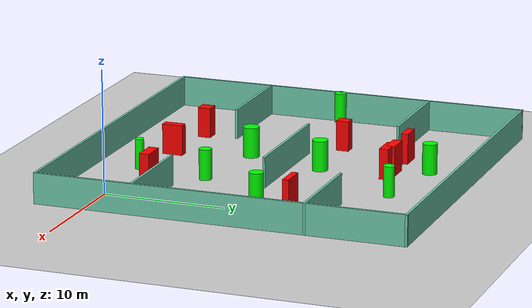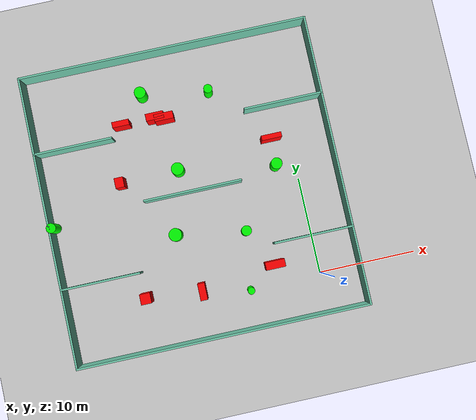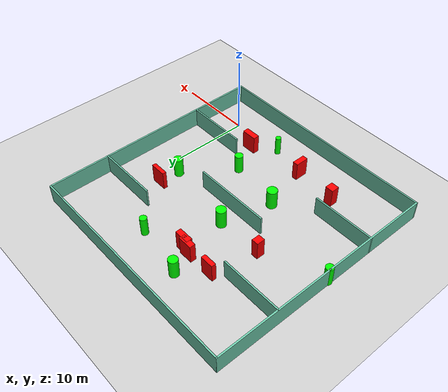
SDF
<sdf version="1.7">
 <world name="default">
  <light name="sun" type="directional">
   <pose>0 0 10 0 -0 0</pose>
   <diffuse>0.8 0.8 0.8 1</diffuse>
   <specular>0.2 0.2 0.2 1</specular>
   <attenuation>
    <range>1000</range>
    <constant>0.9</constant>
    <linear>0.01</linear>
    <quadratic>0.001</quadratic>
   </attenuation>
   <direction>-0.5 0.1 -0.9</direction>
   <spot><inner_angle>0</inner_angle><outer_angle>0</outer_angle><falloff>0</falloff></spot>
  </light>
  <model name="ground_plane">
   <static>1</static>
   <link name="link">
    <collision name="collision">
     <geometry><plane><normal>0 0 1</normal><size>100 100</size></plane></geometry>
     <surface>
      <contact><collide_bitmask>65535</collide_bitmask></contact>
      <friction><ode><mu>100</mu><mu2>50</mu2></ode></friction>
     </surface>
    </collision>
    <visual name="visual">
     <cast_shadows>0</cast_shadows>
     <geometry><plane><normal>0 0 1</normal><size>100 100</size></plane></geometry>
     <material>
      <script><uri>file://media/materials/scripts/gazebo.material</uri><name>Gazebo/Grey</name></script>
     </material>
    </visual>
   </link>
  </model>
  <gravity>0 0 -9.8</gravity>
  <magnetic_field>6e-06 2.3e-05 -4.2e-05</magnetic_field>
  <atmosphere type="adiabatic"/>
  <physics type="ode">
   <max_step_size>0.001</max_step_size>
   <real_time_factor>1</real_time_factor>
   <real_time_update_rate>1000</real_time_update_rate>
  </physics>
  <scene><ambient>0.4 0.4 0.4 1</ambient><background>0.7 0.7 0.7 1</background><shadows>1</shadows></scene>
  <spherical_coordinates>
   <surface_model>EARTH_WGS84</surface_model>
   <latitude_deg>0</latitude_deg>
   <longitude_deg>0</longitude_deg>
   <elevation>0</elevation>
   <heading_deg>0</heading_deg>
  </spherical_coordinates>
  <model name="my_base_walls">
   <link name="Wall_10">
    <collision name="Wall_10_Collision">
     <geometry><box><size>8.2 0.2 2.5</size></box></geometry>
     <pose>0 0 1.25 0 -0 0</pose>
    </collision>
    <visual name="Wall_10_Visual">
     <pose>0 0 1.25 0 -0 0</pose>
     <geometry><box><size>8.2 0.2 2.5</size></box></geometry>
     <material>
      <script><uri>file://media/materials/scripts/gazebo.material</uri><name>Gazebo/Grey</name></script>
      <ambient>0.435294 0.796078 0.67451 1</ambient>
     </material>
     <meta><layer>0</layer></meta>
    </visual>
    <pose>-11 -7 0 0 -0 0</pose>
   </link>
   <link name="Wall_12">
    <collision name="Wall_12_Collision">
     <geometry><box><size>8.2 0.2 2.5</size></box></geometry>
     <pose>0 0 1.25 0 -0 0</pose>
    </collision>
    <visual name="Wall_12_Visual">
     <pose>0 0 1.25 0 -0 0</pose>
     <geometry><box><size>8.2 0.2 2.5</size></box></geometry>
     <material>
      <script><uri>file://media/materials/scripts/gazebo.material</uri><name>Gazebo/Grey</name></script>
      <ambient>0.435294 0.796078 0.67451 1</ambient>
     </material>
     <meta><layer>0</layer></meta>
    </visual>
    <pose>-11 7 0 0 -0 0</pose>
   </link>
   <link name="Wall_14">
    <collision name="Wall_14_Collision">
     <geometry><box><size>8.2 0.2 2.5</size></box></geometry>
     <pose>0 0 1.25 0 -0 0</pose>
    </collision>
    <visual name="Wall_14_Visual">
     <pose>0 0 1.25 0 -0 0</pose>
     <geometry><box><size>8.2 0.2 2.5</size></box></geometry>
     <material>
      <script><uri>file://media/materials/scripts/gazebo.material</uri><name>Gazebo/Grey</name></script>
      <ambient>0.435294 0.796078 0.67451 1</ambient>
     </material>
     <meta><layer>0</layer></meta>
    </visual>
    <pose>11 7 0 0 -0 3.14159</pose>
   </link>
   <link name="Wall_16">
    <collision name="Wall_16_Collision">
     <geometry><box><size>10.2 0.2 2.5</size></box></geometry>
     <pose>0 0 1.25 0 -0 0</pose>
    </collision>
    <visual name="Wall_16_Visual">
     <pose>0 0 1.25 0 -0 0</pose>
     <geometry><box><size>10.2 0.2 2.5</size></box></geometry>
     <material>
      <script><uri>file://media/materials/scripts/gazebo.material</uri><name>Gazebo/Grey</name></script>
      <ambient>0.435294 0.796078 0.67451 1</ambient>
     </material>
     <meta><layer>0</layer></meta>
    </visual>
    <pose>0 0 0 0 -0 3.14159</pose>
   </link>
   <link name="Wall_2">
    <collision name="Wall_2_Collision">
     <geometry><box><size>30.2 0.2 2.5</size></box></geometry>
     <pose>0 0 1.25 0 -0 0</pose>
    </collision>
    <visual name="Wall_2_Visual">
     <pose>0 0 1.25 0 -0 0</pose>
     <geometry><box><size>30.2 0.2 2.5</size></box></geometry>
     <material>
      <script><uri>file://media/materials/scripts/gazebo.material</uri><name>Gazebo/Grey</name></script>
      <ambient>0.435294 0.796078 0.67451 1</ambient>
     </material>
     <meta><layer>0</layer></meta>
    </visual>
    <pose>0 -15 0 0 -0 3.14159</pose>
   </link>
   <link name="Wall_3">
    <collision name="Wall_3_Collision">
     <geometry><box><size>30.2 0.2 2.5</size></box></geometry>
     <pose>0 0 1.25 0 -0 0</pose>
    </collision>
    <visual name="Wall_3_Visual">
     <pose>0 0 1.25 0 -0 0</pose>
     <geometry><box><size>30.2 0.2 2.5</size></box></geometry>
     <material>
      <script><uri>file://media/materials/scripts/gazebo.material</uri><name>Gazebo/Grey</name></script>
      <ambient>0.435294 0.796078 0.67451 1</ambient>
     </material>
     <meta><layer>0</layer></meta>
    </visual>
    <pose>-15 0 0 0 -0 1.5708</pose>
   </link>
   <link name="Wall_4">
    <collision name="Wall_4_Collision">
     <geometry><box><size>30.2 0.2 2.5</size></box></geometry>
     <pose>0 0 1.25 0 -0 0</pose>
    </collision>
    <visual name="Wall_4_Visual">
     <pose>0 0 1.25 0 -0 0</pose>
     <geometry><box><size>30.2 0.2 2.5</size></box></geometry>
     <material>
      <script><uri>file://media/materials/scripts/gazebo.material</uri><name>Gazebo/Grey</name></script>
      <ambient>0.435294 0.796078 0.67451 1</ambient>
     </material>
     <meta><layer>0</layer></meta>
    </visual>
    <pose>0 15 0 0 -0 0</pose>
   </link>
   <link name="Wall_6">
    <collision name="Wall_6_Collision">
     <geometry><box><size>30.2 0.2 2.5</size></box></geometry>
     <pose>0 0 1.25 0 -0 0</pose>
    </collision>
    <visual name="Wall_6_Visual">
     <pose>0 0 1.25 0 -0 0</pose>
     <geometry><box><size>30.2 0.2 2.5</size></box></geometry>
     <material>
      <script><uri>file://media/materials/scripts/gazebo.material</uri><name>Gazebo/Grey</name></script>
      <ambient>0.435294 0.796078 0.67451 1</ambient>
     </material>
     <meta><layer>0</layer></meta>
    </visual>
    <pose>15 0 0 0 -0 1.5708</pose>
   </link>
   <link name="Wall_8">
    <collision name="Wall_8_Collision">
     <geometry><box><size>8.2 0.2 2.5</size></box></geometry>
     <pose>0 0 1.25 0 -0 0</pose>
    </collision>
    <visual name="Wall_8_Visual">
     <pose>0 0 1.25 0 -0 0</pose>
     <geometry><box><size>8.2 0.2 2.5</size></box></geometry>
     <material>
      <script><uri>file://media/materials/scripts/gazebo.material</uri><name>Gazebo/Grey</name></script>
      <ambient>0.435294 0.796078 0.67451 1</ambient>
     </material>
     <meta><layer>0</layer></meta>
    </visual>
    <pose>11 -7 0 0 -0 3.14159</pose>
   </link>
   <static>1</static>
   <pose>-11 11 0 0 -0 0</pose>
  </model>
  <model name="cylinder1">
   <static>1</static>
   <link name="link">
    <inertial>
     <mass>1</mass>
     <inertia><ixx>0.5</ixx><ixy>0</ixy><ixz>0</ixz><iyy>0.5</iyy><iyz>0</iyz><izz>1</izz></inertia>
    </inertial>
    <collision name="collision">
     <geometry><cylinder><radius>0.6436293632819654</radius><length>2.5</length></cylinder></geometry>
    </collision>
    <visual name="visual">
     <geometry><cylinder><radius>0.6436293632819654</radius><length>2.5</length></cylinder></geometry>
     <material>
      <ambient>0 1 0 1</ambient>
      <diffuse>0 1 0 1</diffuse>
      <specular>0.1 0.1 0.1 1</specular>
      <emissive>0 0 0 0</emissive>
     </material>
    </visual>
   </link>
   <pose>-12.047141002691557 13.453693067569592 1.25 0 0 0</pose>
  </model>
  <model name="cylinder2">
   <static>1</static>
   <link name="link">
    <inertial>
     <mass>1</mass>
     <inertia><ixx>0.5</ixx><ixy>0</ixy><ixz>0</ixz><iyy>0.5</iyy><iyz>0</iyz><izz>1</izz></inertia>
    </inertial>
    <collision name="collision">
     <geometry><cylinder><radius>0.5948579140802455</radius><length>2.5</length></cylinder></geometry>
    </collision>
    <visual name="visual">
     <geometry><cylinder><radius>0.5948579140802455</radius><length>2.5</length></cylinder></geometry>
     <material>
      <ambient>0 1 0 1</ambient>
      <diffuse>0 1 0 1</diffuse>
      <specular>0.1 0.1 0.1 1</specular>
      <emissive>0 0 0 0</emissive>
     </material>
    </visual>
   </link>
   <pose>-14.155045559700088 21.93722171552936 1.25 0 0 0</pose>
  </model>
  <model name="cylinder3">
   <static>1</static>
   <link name="link">
    <inertial>
     <mass>1</mass>
     <inertia><ixx>0.5</ixx><ixy>0</ixy><ixz>0</ixz><iyy>0.5</iyy><iyz>0</iyz><izz>1</izz></inertia>
    </inertial>
    <collision name="collision">
     <geometry><cylinder><radius>0.5205876117994227</radius><length>2.5</length></cylinder></geometry>
    </collision>
    <visual name="visual">
     <geometry><cylinder><radius>0.5205876117994227</radius><length>2.5</length></cylinder></geometry>
     <material>
      <ambient>0 1 0 1</ambient>
      <diffuse>0 1 0 1</diffuse>
      <specular>0.1 0.1 0.1 1</specular>
      <emissive>0 0 0 0</emissive>
     </material>
    </visual>
   </link>
   <pose>-6.562461456213374 5.832173737597611 1.25 0 0 0</pose>
  </model>
  <model name="cylinder4">
   <static>1</static>
   <link name="link">
    <inertial>
     <mass>1</mass>
     <inertia><ixx>0.5</ixx><ixy>0</ixy><ixz>0</ixz><iyy>0.5</iyy><iyz>0</iyz><izz>1</izz></inertia>
    </inertial>
    <collision name="collision">
     <geometry><cylinder><radius>0.5024391320687099</radius><length>2.5</length></cylinder></geometry>
    </collision>
    <visual name="visual">
     <geometry><cylinder><radius>0.5024391320687099</radius><length>2.5</length></cylinder></geometry>
     <material>
      <ambient>0 1 0 1</ambient>
      <diffuse>0 1 0 1</diffuse>
      <specular>0.1 0.1 0.1 1</specular>
      <emissive>0 0 0 0</emissive>
     </material>
    </visual>
   </link>
   <pose>-25.752436826650527 10.309649597551843 1.25 0 0 0</pose>
  </model>
  <model name="cylinder5">
   <static>1</static>
   <link name="link">
    <inertial>
     <mass>1</mass>
     <inertia><ixx>0.5</ixx><ixy>0</ixy><ixz>0</ixz><iyy>0.5</iyy><iyz>0</iyz><izz>1</izz></inertia>
    </inertial>
    <collision name="collision">
     <geometry><cylinder><radius>0.6657884262083571</radius><length>2.5</length></cylinder></geometry>
    </collision>
    <visual name="visual">
     <geometry><cylinder><radius>0.6657884262083571</radius><length>2.5</length></cylinder></geometry>
     <material>
      <ambient>0 1 0 1</ambient>
      <diffuse>0 1 0 1</diffuse>
      <specular>0.1 0.1 0.1 1</specular>
      <emissive>0 0 0 0</emissive>
     </material>
    </visual>
   </link>
   <pose>-13.654989906937075 6.969797752562172 1.25 0 0 0</pose>
  </model>
  <model name="cylinder6">
   <static>1</static>
   <link name="link">
    <inertial>
     <mass>1</mass>
     <inertia><ixx>0.5</ixx><ixy>0</ixy><ixz>0</ixz><iyy>0.5</iyy><iyz>0</iyz><izz>1</izz></inertia>
    </inertial>
    <collision name="collision">
     <geometry><cylinder><radius>0.35737576091746726</radius><length>2.5</length></cylinder></geometry>
    </collision>
    <visual name="visual">
     <geometry><cylinder><radius>0.35737576091746726</radius><length>2.5</length></cylinder></geometry>
     <material>
      <ambient>0 1 0 1</ambient>
      <diffuse>0 1 0 1</diffuse>
      <specular>0.1 0.1 0.1 1</specular>
      <emissive>0 0 0 0</emissive>
     </material>
    </visual>
   </link>
   <pose>-7.376401384146876 -0.1531970920408634 1.25 0 0 0</pose>
  </model>
  <model name="cylinder7">
   <static>1</static>
   <link name="link">
    <inertial>
     <mass>1</mass>
     <inertia><ixx>0.5</ixx><ixy>0</ixy><ixz>0</ixz><iyy>0.5</iyy><iyz>0</iyz><izz>1</izz></inertia>
    </inertial>
    <collision name="collision">
     <geometry><cylinder><radius>0.5829204481960026</radius><length>2.5</length></cylinder></geometry>
    </collision>
    <visual name="visual">
     <geometry><cylinder><radius>0.5829204481960026</radius><length>2.5</length></cylinder></geometry>
     <material>
      <ambient>0 1 0 1</ambient>
      <diffuse>0 1 0 1</diffuse>
      <specular>0.1 0.1 0.1 1</specular>
      <emissive>0 0 0 0</emissive>
     </material>
    </visual>
   </link>
   <pose>-2.095137140694792 11.835194319665465 1.25 0 0 0</pose>
  </model>
  <model name="cylinder8">
   <static>1</static>
   <link name="link">
    <inertial>
     <mass>1</mass>
     <inertia><ixx>0.5</ixx><ixy>0</ixy><ixz>0</ixz><iyy>0.5</iyy><iyz>0</iyz><izz>1</izz></inertia>
    </inertial>
    <collision name="collision">
     <geometry><cylinder><radius>0.45071790574781057</radius><length>2.5</length></cylinder></geometry>
    </collision>
    <visual name="visual">
     <geometry><cylinder><radius>0.45071790574781057</radius><length>2.5</length></cylinder></geometry>
     <material>
      <ambient>0 1 0 1</ambient>
      <diffuse>0 1 0 1</diffuse>
      <specular>0.1 0.1 0.1 1</specular>
      <emissive>0 0 0 0</emissive>
     </material>
    </visual>
   </link>
   <pose>-7.279014179493005 20.83412196503513 1.25 0 0 0</pose>
  </model>
  <model name="box1">
   <static>1</static>
   <link name="link">
    <inertial>
     <mass>1</mass>
     <inertia><ixx>0.083</ixx><ixy>0</ixy><ixz>0</ixz><iyy>0.083</iyy><iyz>0</iyz><izz>0.083</izz></inertia>
    </inertial>
    <collision name="collision">
     <geometry><box><size>1.7414383840102514 0.5787346593927396 2.5</size></box></geometry>
    </collision>
    <visual name="visual">
     <geometry><box><size>1.7414383840102514 0.5787346593927396 2.5</size></box></geometry>
     <material>
      <ambient>1 0 0 1</ambient>
      <diffuse>1 0 0 1</diffuse>
      <specular>0.1 0.1 0.1 1</specular>
      <emissive>0 0 0 0</emissive>
     </material>
    </visual>
    <sensor name="my_contact" type="contact">
     <contact><collision>box_collision</collision><topic>__default_topic__</topic></contact>
    </sensor>
   </link>
   <pose>-16.745026980989085 19.24484842369126 1.25 0 0 0</pose>
  </model>
  <model name="box2">
   <static>1</static>
   <link name="link">
    <inertial>
     <mass>1</mass>
     <inertia><ixx>0.083</ixx><ixy>0</ixy><ixz>0</ixz><iyy>0.083</iyy><iyz>0</iyz><izz>0.083</izz></inertia>
    </inertial>
    <collision name="collision">
     <geometry><box><size>1.9681027125350516 0.7456443283368066 2.5</size></box></geometry>
    </collision>
    <visual name="visual">
     <geometry><box><size>1.9681027125350516 0.7456443283368066 2.5</size></box></geometry>
     <material>
      <ambient>1 0 0 1</ambient>
      <diffuse>1 0 0 1</diffuse>
      <specular>0.1 0.1 0.1 1</specular>
      <emissive>0 0 0 0</emissive>
     </material>
    </visual>
    <sensor name="my_contact" type="contact">
     <contact><collision>box_collision</collision><topic>__default_topic__</topic></contact>
    </sensor>
   </link>
   <pose>-12.297338818313355 19.02632073217615 1.25 0 0 0</pose>
  </model>
  <model name="box3">
   <static>1</static>
   <link name="link">
    <inertial>
     <mass>1</mass>
     <inertia><ixx>0.083</ixx><ixy>0</ixy><ixz>0</ixz><iyy>0.083</iyy><iyz>0</iyz><izz>0.083</izz></inertia>
    </inertial>
    <collision name="collision">
     <geometry><box><size>2.07951626886281 0.5060689373942362 2.5</size></box></geometry>
    </collision>
    <visual name="visual">
     <geometry><box><size>2.07951626886281 0.5060689373942362 2.5</size></box></geometry>
     <material>
      <ambient>1 0 0 1</ambient>
      <diffuse>1 0 0 1</diffuse>
      <specular>0.1 0.1 0.1 1</specular>
      <emissive>0 0 0 0</emissive>
     </material>
    </visual>
    <sensor name="my_contact" type="contact">
     <contact><collision>box_collision</collision><topic>__default_topic__</topic></contact>
    </sensor>
   </link>
   <pose>-1.9939777145841298 14.658341112276691 1.25 0 0 0</pose>
  </model>
  <model name="box4">
   <static>1</static>
   <link name="link">
    <inertial>
     <mass>1</mass>
     <inertia><ixx>0.083</ixx><ixy>0</ixy><ixz>0</ixz><iyy>0.083</iyy><iyz>0</iyz><izz>0.083</izz></inertia>
    </inertial>
    <collision name="collision">
     <geometry><box><size>2.0096540845115856 0.8014086101639462 2.5</size></box></geometry>
    </collision>
    <visual name="visual">
     <geometry><box><size>2.0096540845115856 0.8014086101639462 2.5</size></box></geometry>
     <material>
      <ambient>1 0 0 1</ambient>
      <diffuse>1 0 0 1</diffuse>
      <specular>0.1 0.1 0.1 1</specular>
      <emissive>0 0 0 0</emissive>
     </material>
    </visual>
    <sensor name="my_contact" type="contact">
     <contact><collision>box_collision</collision><topic>__default_topic__</topic></contact>
    </sensor>
   </link>
   <pose>-4.462985979321077 1.8951438348481098 1.25 0 0 0</pose>
  </model>
  <model name="box5">
   <static>1</static>
   <link name="link">
    <inertial>
     <mass>1</mass>
     <inertia><ixx>0.083</ixx><ixy>0</ixy><ixz>0</ixz><iyy>0.083</iyy><iyz>0</iyz><izz>0.083</izz></inertia>
    </inertial>
    <collision name="collision">
     <geometry><box><size>1.8571204527626408 0.7371900880918715 2.5</size></box></geometry>
    </collision>
    <visual name="visual">
     <geometry><box><size>1.8571204527626408 0.7371900880918715 2.5</size></box></geometry>
     <material>
      <ambient>1 0 0 1</ambient>
      <diffuse>1 0 0 1</diffuse>
      <specular>0.1 0.1 0.1 1</specular>
      <emissive>0 0 0 0</emissive>
     </material>
    </visual>
    <sensor name="my_contact" type="contact">
     <contact><collision>box_collision</collision><topic>__default_topic__</topic></contact>
    </sensor>
   </link>
   <pose>-13.187342444451101 19.259835017204374 1.25 0 0 0</pose>
  </model>
  <model name="box6">
   <static>1</static>
   <link name="link">
    <inertial>
     <mass>1</mass>
     <inertia><ixx>0.083</ixx><ixy>0</ixy><ixz>0</ixz><iyy>0.083</iyy><iyz>0</iyz><izz>0.083</izz></inertia>
    </inertial>
    <collision name="collision">
     <geometry><box><size>0.9059247853779488 1.0491238569036512 2.5</size></box></geometry>
    </collision>
    <visual name="visual">
     <geometry><box><size>0.9059247853779488 1.0491238569036512 2.5</size></box></geometry>
     <material>
      <ambient>1 0 0 1</ambient>
      <diffuse>1 0 0 1</diffuse>
      <specular>0.1 0.1 0.1 1</specular>
      <emissive>0 0 0 0</emissive>
     </material>
    </visual>
    <sensor name="my_contact" type="contact">
     <contact><collision>box_collision</collision><topic>__default_topic__</topic></contact>
    </sensor>
   </link>
   <pose>-18.09658006001245 13.349852432221521 1.25 0 0 0</pose>
  </model>
  <model name="box7">
   <static>1</static>
   <link name="link">
    <inertial>
     <mass>1</mass>
     <inertia><ixx>0.083</ixx><ixy>0</ixy><ixz>0</ixz><iyy>0.083</iyy><iyz>0</iyz><izz>0.083</izz></inertia>
    </inertial>
    <collision name="collision">
     <geometry><box><size>1.0725656652776974 1.0681508973227283 2.5</size></box></geometry>
    </collision>
    <visual name="visual">
     <geometry><box><size>1.0725656652776974 1.0681508973227283 2.5</size></box></geometry>
     <material>
      <ambient>1 0 0 1</ambient>
      <diffuse>1 0 0 1</diffuse>
      <specular>0.1 0.1 0.1 1</specular>
      <emissive>0 0 0 0</emissive>
     </material>
    </visual>
    <sensor name="my_contact" type="contact">
     <contact><collision>box_collision</collision><topic>__default_topic__</topic></contact>
    </sensor>
   </link>
   <pose>-17.913011820076502 1.352678721914625 1.25 0 0 0</pose>
  </model>
  <model name="box8">
   <static>1</static>
   <link name="link">
    <inertial>
     <mass>1</mass>
     <inertia><ixx>0.083</ixx><ixy>0</ixy><ixz>0</ixz><iyy>0.083</iyy><iyz>0</iyz><izz>0.083</izz></inertia>
    </inertial>
    <collision name="collision">
     <geometry><box><size>0.7199900885254831 1.7189634102867488 2.5</size></box></geometry>
    </collision>
    <visual name="visual">
     <geometry><box><size>0.7199900885254831 1.7189634102867488 2.5</size></box></geometry>
     <material>
      <ambient>1 0 0 1</ambient>
      <diffuse>1 0 0 1</diffuse>
      <specular>0.1 0.1 0.1 1</specular>
      <emissive>0 0 0 0</emissive>
     </material>
    </visual>
    <sensor name="my_contact" type="contact">
     <contact><collision>box_collision</collision><topic>__default_topic__</topic></contact>
    </sensor>
   </link>
   <pose>-12.187887399114958 0.8147940722057636 1.25 0 0 0</pose>
  </model>
 </world>
</sdf>
